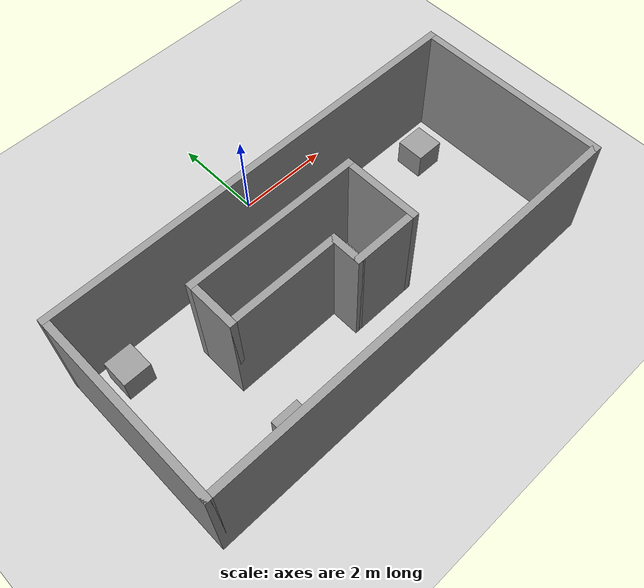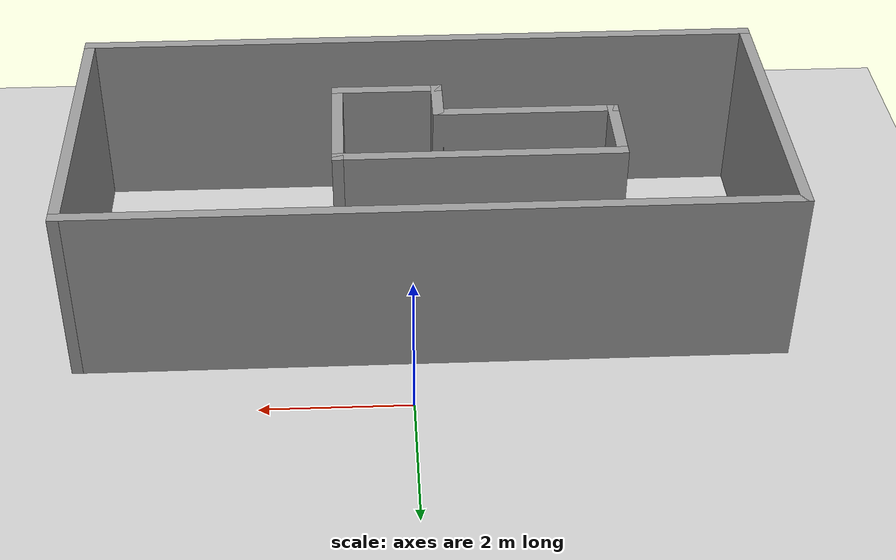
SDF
<sdf version="1.6">
 <world name="default">
  <light name="sun" type="directional">
   <pose>0 0 10 0 -0 0</pose>
   <diffuse>0.8 0.8 0.8 1</diffuse>
   <specular>0.2 0.2 0.2 1</specular>
   <attenuation>
    <range>1000</range>
    <constant>0.9</constant>
    <linear>0.01</linear>
    <quadratic>0.001</quadratic>
   </attenuation>
   <direction>-0.5 0.1 -0.9</direction>
  </light>
  <model name="ground_plane">
   <static>1</static>
   <link name="link">
    <collision name="collision">
     <geometry><plane><normal>0 0 1</normal><size>100 100</size></plane></geometry>
     <surface><friction><ode><mu>100</mu><mu2>50</mu2></ode></friction></surface>
    </collision>
    <visual name="visual">
     <cast_shadows>0</cast_shadows>
     <geometry><plane><normal>0 0 1</normal><size>100 100</size></plane></geometry>
     <material>
      <script><uri>file://media/materials/scripts/gazebo.material</uri><name>Gazebo/Grey</name></script>
     </material>
    </visual>
   </link>
  </model>
  <gravity>0 0 -9.8</gravity>
  <magnetic_field>6e-06 2.3e-05 -4.2e-05</magnetic_field>
  <atmosphere type="adiabatic"/>
  <physics name="default_physics" default="0" type="ode">
   <max_step_size>0.001</max_step_size>
   <real_time_factor>1</real_time_factor>
   <real_time_update_rate>1000</real_time_update_rate>
  </physics>
  <scene><ambient>0.4 0.4 0.4 1</ambient><background>0.7 0.7 0.7 1</background><shadows>1</shadows></scene>
  <audio><device>default</device></audio>
  <spherical_coordinates>
   <surface_model>EARTH_WGS84</surface_model>
   <latitude_deg>0</latitude_deg>
   <longitude_deg>0</longitude_deg>
   <elevation>0</elevation>
   <heading_deg>0</heading_deg>
  </spherical_coordinates>
  <model name="clos">
   <pose>-0.275 -2.94 0 0 -0 0</pose>
   <link name="Wall_0">
    <collision name="Wall_0_Collision">
     <geometry><box><size>4.25 0.15 2.5</size></box></geometry>
     <pose>0 0 1.25 0 -0 0</pose>
    </collision>
    <visual name="Wall_0_Visual">
     <pose>0 0 1.25 0 -0 0</pose>
     <geometry><box><size>4.25 0.15 2.5</size></box></geometry>
     <material>
      <script><uri>file://media/materials/scripts/gazebo.material</uri><name>Gazebo/Grey</name></script>
      <ambient>1 1 1 1</ambient>
     </material>
     <meta><layer>0</layer></meta>
    </visual>
    <pose>-4.675 0 0 0 -0 -1.5708</pose>
   </link>
   <link name="Wall_1">
    <collision name="Wall_1_Collision">
     <geometry><box><size>9.5 0.15 2.5</size></box></geometry>
     <pose>0 0 1.25 0 -0 0</pose>
    </collision>
    <visual name="Wall_1_Visual">
     <pose>0 0 1.25 0 -0 0</pose>
     <geometry><box><size>9.5 0.15 2.5</size></box></geometry>
     <material>
      <script><uri>file://media/materials/scripts/gazebo.material</uri><name>Gazebo/Grey</name></script>
      <ambient>1 1 1 1</ambient>
     </material>
     <meta><layer>0</layer></meta>
    </visual>
    <pose>-0 -2.05 0 0 -0 0</pose>
   </link>
   <link name="Wall_10">
    <collision name="Wall_10_Collision">
     <geometry><box><size>3.85 0.15 2.5</size></box></geometry>
     <pose>0 0 1.25 0 -0 0</pose>
    </collision>
    <visual name="Wall_10_Visual">
     <pose>0 0 1.25 0 -0 0</pose>
     <geometry><box><size>3.85 0.15 2.5</size></box></geometry>
     <material>
      <script><uri>file://media/materials/scripts/gazebo.material</uri><name>Gazebo/Grey</name></script>
      <ambient>1 1 1 1</ambient>
     </material>
     <meta><layer>0</layer></meta>
    </visual>
    <pose>-0.675 0.89 0 0 -0 3.14159</pose>
   </link>
   <link name="Wall_2">
    <collision name="Wall_2_Collision">
     <geometry><box><size>4.25 0.15 2.5</size></box></geometry>
     <pose>0 0 1.25 0 -0 0</pose>
    </collision>
    <visual name="Wall_2_Visual">
     <pose>0 0 1.25 0 -0 0</pose>
     <geometry><box><size>4.25 0.15 2.5</size></box></geometry>
     <material>
      <script><uri>file://media/materials/scripts/gazebo.material</uri><name>Gazebo/Grey</name></script>
      <ambient>1 1 1 1</ambient>
     </material>
     <meta><layer>0</layer></meta>
    </visual>
    <pose>4.675 0 0 0 -0 1.5708</pose>
   </link>
   <link name="Wall_3">
    <collision name="Wall_3_Collision">
     <geometry><box><size>9.5 0.15 2.5</size></box></geometry>
     <pose>0 0 1.25 0 -0 0</pose>
    </collision>
    <visual name="Wall_3_Visual">
     <pose>0 0 1.25 0 -0 0</pose>
     <geometry><box><size>9.5 0.15 2.5</size></box></geometry>
     <material>
      <script><uri>file://media/materials/scripts/gazebo.material</uri><name>Gazebo/Grey</name></script>
      <ambient>1 1 1 1</ambient>
     </material>
     <meta><layer>0</layer></meta>
    </visual>
    <pose>-0 2.05 0 0 -0 3.14159</pose>
   </link>
   <link name="Wall_5">
    <collision name="Wall_5_Collision">
     <geometry><box><size>1 0.15 2.5</size></box></geometry>
     <pose>0 0 1.25 0 -0 0</pose>
    </collision>
    <visual name="Wall_5_Visual">
     <pose>0 0 1.25 0 -0 0</pose>
     <geometry><box><size>1 0.15 2.5</size></box></geometry>
     <material>
      <script><uri>file://media/materials/scripts/gazebo.material</uri><name>Gazebo/Grey</name></script>
      <ambient>1 1 1 1</ambient>
     </material>
     <meta><layer>0</layer></meta>
    </visual>
    <pose>-2.525 0.315 0 0 -0 -1.5708</pose>
   </link>
   <link name="Wall_6">
    <collision name="Wall_6_Collision">
     <geometry><box><size>2.5 0.15 2.5</size></box></geometry>
     <pose>0 0 1.25 0 -0 0</pose>
    </collision>
    <visual name="Wall_6_Visual">
     <pose>0 0 1.25 0 -0 0</pose>
     <geometry><box><size>2.5 0.15 2.5</size></box></geometry>
     <material>
      <script><uri>file://media/materials/scripts/gazebo.material</uri><name>Gazebo/Grey</name></script>
      <ambient>1 1 1 1</ambient>
     </material>
     <meta><layer>0</layer></meta>
    </visual>
    <pose>-1.35 -0.11 0 0 -0 0</pose>
   </link>
   <link name="Wall_7">
    <collision name="Wall_7_Collision">
     <geometry><box><size>0.75 0.15 2.5</size></box></geometry>
     <pose>0 0 1.25 0 -0 0</pose>
    </collision>
    <visual name="Wall_7_Visual">
     <pose>0 0 1.25 0 -0 0</pose>
     <geometry><box><size>0.75 0.15 2.5</size></box></geometry>
     <material>
      <script><uri>file://media/materials/scripts/gazebo.material</uri><name>Gazebo/Grey</name></script>
      <ambient>1 1 1 1</ambient>
     </material>
     <meta><layer>0</layer></meta>
    </visual>
    <pose>-0.175 -0.41 0 0 -0 -1.5708</pose>
   </link>
   <link name="Wall_8">
    <collision name="Wall_8_Collision">
     <geometry><box><size>1.5 0.15 2.5</size></box></geometry>
     <pose>0 0 1.25 0 -0 0</pose>
    </collision>
    <visual name="Wall_8_Visual">
     <pose>0 0 1.25 0 -0 0</pose>
     <geometry><box><size>1.5 0.15 2.5</size></box></geometry>
     <material>
      <script><uri>file://media/materials/scripts/gazebo.material</uri><name>Gazebo/Grey</name></script>
      <ambient>1 1 1 1</ambient>
     </material>
     <meta><layer>0</layer></meta>
    </visual>
    <pose>0.5 -0.71 0 0 -0 0</pose>
   </link>
   <link name="Wall_9">
    <collision name="Wall_9_Collision">
     <geometry><box><size>1.75 0.15 2.5</size></box></geometry>
     <pose>0 0 1.25 0 -0 0</pose>
    </collision>
    <visual name="Wall_9_Visual">
     <pose>0 0 1.25 0 -0 0</pose>
     <geometry><box><size>1.75 0.15 2.5</size></box></geometry>
     <material>
      <script><uri>file://media/materials/scripts/gazebo.material</uri><name>Gazebo/Grey</name></script>
      <ambient>1 1 1 1</ambient>
     </material>
     <meta><layer>0</layer></meta>
    </visual>
    <pose>1.175 0.09 0 0 -0 1.5708</pose>
   </link>
   <static>1</static>
  </model>
  <model name="unit_box">
   <link name="link">
    <inertial>
     <mass>1</mass>
     <inertia>
      <ixx>0.166667</ixx>
      <ixy>0</ixy>
      <ixz>0</ixz>
      <iyy>0.166667</iyy>
      <iyz>0</iyz>
      <izz>0.166667</izz>
     </inertia>
    </inertial>
    <visual name="visual">
     <geometry><box><size>0.6 0.6 0.6</size></box></geometry>
     <material>
      <script><name>Gazebo/Grey</name><uri>file://media/materials/scripts/gazebo.material</uri></script>
      <shader type="vertex"><normal_map>__default__</normal_map></shader>
      <ambient>0.3 0.3 0.3 1</ambient>
      <diffuse>0.7 0.7 0.7 1</diffuse>
      <specular>0.01 0.01 0.01 1</specular>
      <emissive>0 0 0 1</emissive>
     </material>
    </visual>
    <collision name="collision">
     <geometry><box><size>0.6 0.6 0.6</size></box></geometry>
     <surface>
      <friction>
       <ode><mu>1</mu><mu2>1</mu2><fdir1>0 0 0</fdir1><slip1>0</slip1><slip2>0</slip2></ode>
       <torsional>
        <coefficient>1</coefficient>
        <patch_radius>0</patch_radius>
        <surface_radius>0</surface_radius>
        <use_patch_radius>1</use_patch_radius>
        <ode><slip>0</slip></ode>
       </torsional>
      </friction>
      <bounce><restitution_coefficient>0</restitution_coefficient><threshold>1e+06</threshold></bounce>
      <contact>
       <collide_without_contact>0</collide_without_contact>
       <collide_without_contact_bitmask>1</collide_without_contact_bitmask>
       <collide_bitmask>1</collide_bitmask>
       <ode>
        <soft_cfm>0</soft_cfm>
        <soft_erp>0.2</soft_erp>
        <kp>1e+13</kp>
        <kd>1</kd>
        <max_vel>0.01</max_vel>
        <min_depth>0</min_depth>
       </ode>
       <bullet>
        <split_impulse>1</split_impulse>
        <split_impulse_penetration_threshold>-0.01</split_impulse_penetration_threshold>
        <soft_cfm>0</soft_cfm>
        <soft_erp>0.2</soft_erp>
        <kp>1e+13</kp>
        <kd>1</kd>
       </bullet>
      </contact>
     </surface>
    </collision>
   </link>
   <link name="link_clone">
    <inertial>
     <mass>1</mass>
     <inertia>
      <ixx>0.166667</ixx>
      <ixy>0</ixy>
      <ixz>0</ixz>
      <iyy>0.166667</iyy>
      <iyz>0</iyz>
      <izz>0.166667</izz>
     </inertia>
    </inertial>
    <pose>1.39888 -2.91656 -0 0 -0 0</pose>
    <visual name="visual">
     <geometry><box><size>0.6 0.6 0.6</size></box></geometry>
     <material>
      <script><name>Gazebo/Grey</name><uri>file://media/materials/scripts/gazebo.material</uri></script>
      <shader type="vertex"><normal_map>__default__</normal_map></shader>
      <ambient>0.3 0.3 0.3 1</ambient>
      <diffuse>0.7 0.7 0.7 1</diffuse>
      <specular>0.01 0.01 0.01 1</specular>
      <emissive>0 0 0 1</emissive>
     </material>
    </visual>
    <collision name="collision">
     <geometry><box><size>0.6 0.6 0.6</size></box></geometry>
     <surface>
      <friction>
       <ode><mu>1</mu><mu2>1</mu2><fdir1>0 0 0</fdir1><slip1>0</slip1><slip2>0</slip2></ode>
       <torsional>
        <coefficient>1</coefficient>
        <patch_radius>0</patch_radius>
        <surface_radius>0</surface_radius>
        <use_patch_radius>1</use_patch_radius>
        <ode><slip>0</slip></ode>
       </torsional>
      </friction>
      <bounce><restitution_coefficient>0</restitution_coefficient><threshold>1e+06</threshold></bounce>
      <contact>
       <collide_without_contact>0</collide_without_contact>
       <collide_without_contact_bitmask>1</collide_without_contact_bitmask>
       <collide_bitmask>1</collide_bitmask>
       <ode>
        <soft_cfm>0</soft_cfm>
        <soft_erp>0.2</soft_erp>
        <kp>1e+13</kp>
        <kd>1</kd>
        <max_vel>0.01</max_vel>
        <min_depth>0</min_depth>
       </ode>
       <bullet>
        <split_impulse>1</split_impulse>
        <split_impulse_penetration_threshold>-0.01</split_impulse_penetration_threshold>
        <soft_cfm>0</soft_cfm>
        <soft_erp>0.2</soft_erp>
        <kp>1e+13</kp>
        <kd>1</kd>
       </bullet>
      </contact>
     </surface>
    </collision>
   </link>
   <link name="link_clone_0">
    <inertial>
     <mass>1</mass>
     <inertia>
      <ixx>0.166667</ixx>
      <ixy>0</ixy>
      <ixz>0</ixz>
      <iyy>0.166667</iyy>
      <iyz>0</iyz>
      <izz>0.166667</izz>
     </inertia>
    </inertial>
    <pose>7.50934 -0.183807 -0 0 -0 0</pose>
    <visual name="visual">
     <geometry><box><size>0.6 0.6 0.6</size></box></geometry>
     <material>
      <script><name>Gazebo/Grey</name><uri>file://media/materials/scripts/gazebo.material</uri></script>
      <shader type="vertex"><normal_map>__default__</normal_map></shader>
      <ambient>0.3 0.3 0.3 1</ambient>
      <diffuse>0.7 0.7 0.7 1</diffuse>
      <specular>0.01 0.01 0.01 1</specular>
      <emissive>0 0 0 1</emissive>
     </material>
    </visual>
    <collision name="collision">
     <geometry><box><size>0.6 0.6 0.6</size></box></geometry>
     <surface>
      <friction>
       <ode><mu>1</mu><mu2>1</mu2><fdir1>0 0 0</fdir1><slip1>0</slip1><slip2>0</slip2></ode>
       <torsional>
        <coefficient>1</coefficient>
        <patch_radius>0</patch_radius>
        <surface_radius>0</surface_radius>
        <use_patch_radius>1</use_patch_radius>
        <ode><slip>0</slip></ode>
       </torsional>
      </friction>
      <bounce><restitution_coefficient>0</restitution_coefficient><threshold>1e+06</threshold></bounce>
      <contact>
       <collide_without_contact>0</collide_without_contact>
       <collide_without_contact_bitmask>1</collide_without_contact_bitmask>
       <collide_bitmask>1</collide_bitmask>
       <ode>
        <soft_cfm>0</soft_cfm>
        <soft_erp>0.2</soft_erp>
        <kp>1e+13</kp>
        <kd>1</kd>
        <max_vel>0.01</max_vel>
        <min_depth>0</min_depth>
       </ode>
       <bullet>
        <split_impulse>1</split_impulse>
        <split_impulse_penetration_threshold>-0.01</split_impulse_penetration_threshold>
        <soft_cfm>0</soft_cfm>
        <soft_erp>0.2</soft_erp>
        <kp>1e+13</kp>
        <kd>1</kd>
       </bullet>
      </contact>
     </surface>
    </collision>
   </link>
   <static>0</static>
   <pose>-4.19994 -1.58603 0.5 0 -0 0</pose>
  </model>
 </world>
</sdf>
